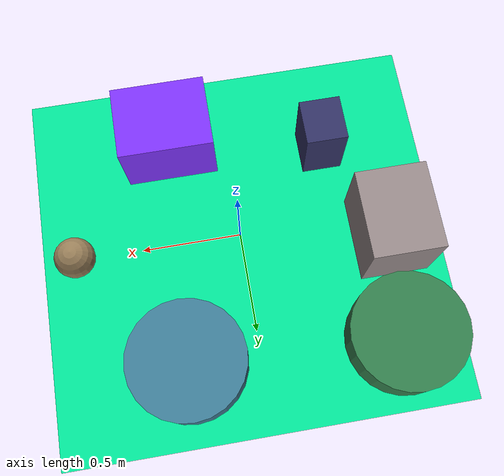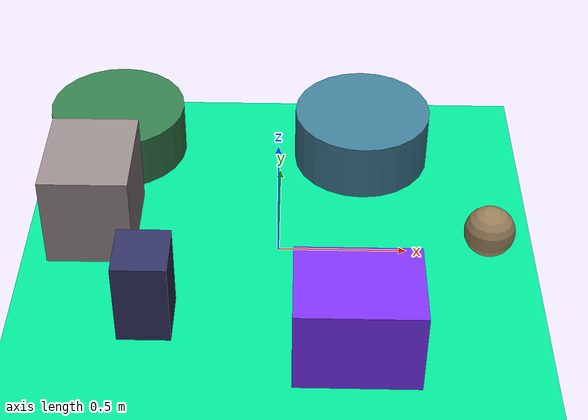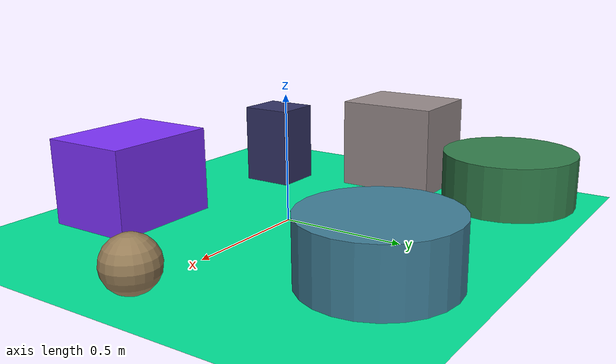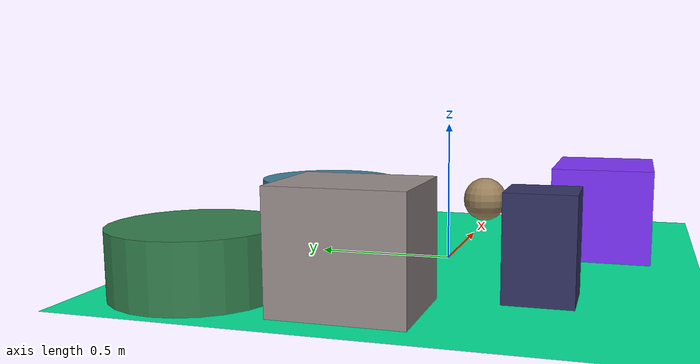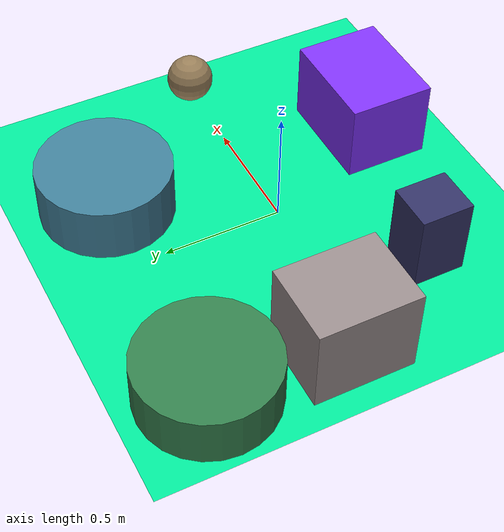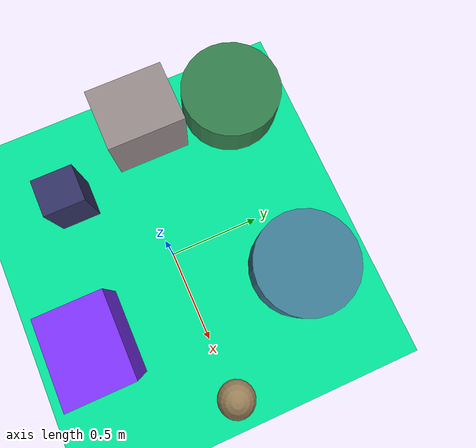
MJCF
<mujoco>
   <asset>
<texture type="skybox" builtin="gradient" rgb1="0.5 0.2 0.2" rgb2="0.5 0.7 0.7" width="256" height="256"/>
<texture name="gradient_0" builtin="gradient" rgb1="0.3 0.7 0.6" rgb2="0.9 0.4 0.5" width="200" height="200"/>
<texture name="flat_1" builtin="flat" rgb1="0.2 0.5 0.3" rgb2="0.2 0.5 0.3"  width="200" height="200"/>
<texture name="flat_2" builtin="flat" rgb1="0.2 0.2 0.4" rgb2="0.2 0.2 0.4"  width="200" height="200"/>
<texture name="flat_3" builtin="flat" rgb1="0.5 0.2 1.0" rgb2="0.5 0.2 1.0"  width="200" height="200"/>
<texture name="checker_4" builtin="checker" type="2d" rgb1="0.5 0.2 0.4" rgb2="0.0 0.8 0.8" width="200" height="200"/>
<texture name="checker_5" builtin="checker" type="2d" rgb1="0.4 0.7 0.6" rgb2="0.8 0.3 0.1" width="200" height="200"/><material name="gradient_0_mat" reflectance="0" texture="gradient_0" texuniform="true"/>
<material name="flat_1_mat" reflectance="0" texture="flat_1" texuniform="true"/>
<material name="flat_2_mat" reflectance="0" texture="flat_2" texuniform="true"/>
<material name="flat_3_mat" reflectance="0" texture="flat_3" texuniform="true"/>
<material name="checker_4_mat" reflectance="0" texrepeat="7 7" texture="checker_4" texuniform="false" />
<material name="checker_5_mat" reflectance="0" texrepeat="4 4" texture="checker_5" texuniform="false" />
   </asset>

   <worldbody>
      <light diffuse=".9 .9 .9" pos="0 0 3" dir="0 0 -1"/>
     <geom type="plane" size="1 1 0.1" rgba="0.0 0.9 0.6 1"/>
<geom type="box" pos="-0.73 0.12 0.19" size="0.17 0.21 0.19" material="gradient_0_mat" />
<geom type="cylinder" pos="-0.69 0.65 0.11" size="0.28 0.11 0.11" material="flat_1_mat" />
<geom type="box" pos="-0.48 -0.4 0.17" size="0.1 0.11 0.17" material="flat_2_mat" />
<geom type="box" pos="0.29 -0.55 0.17" size="0.23 0.18 0.17" material="flat_3_mat" />
<geom type="cylinder" pos="0.34 0.61 0.12" size="0.28 0.12 0.12" material="checker_4_mat" />
<geom type="sphere" pos="0.82 0.01 0.1" size="0.1 0.1 0.1" material="checker_5_mat" /><camera euler="60 0 180" fovy="60" name="camera_a" pos="0 -1.5 1"></camera>   </worldbody>
</mujoco>
